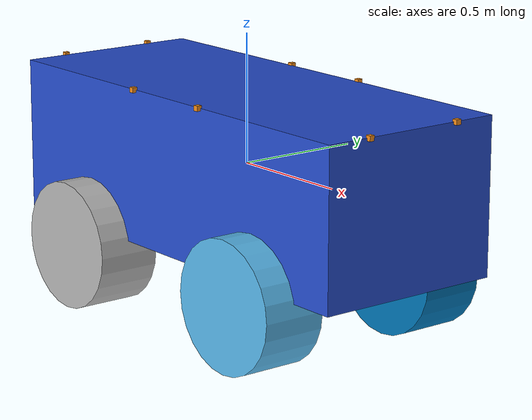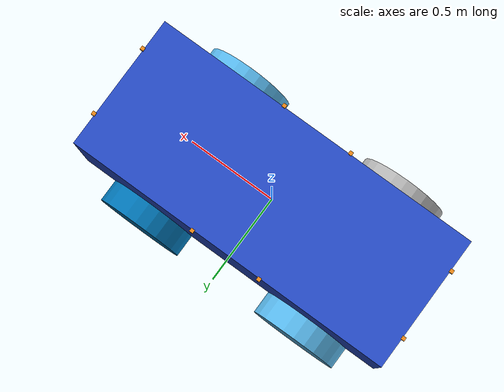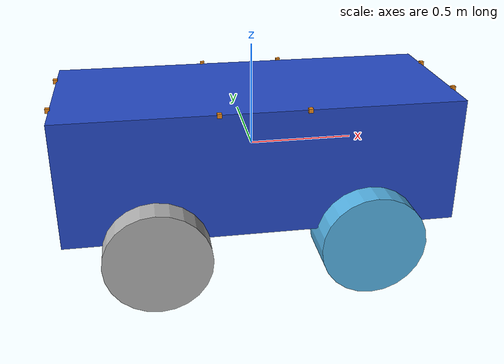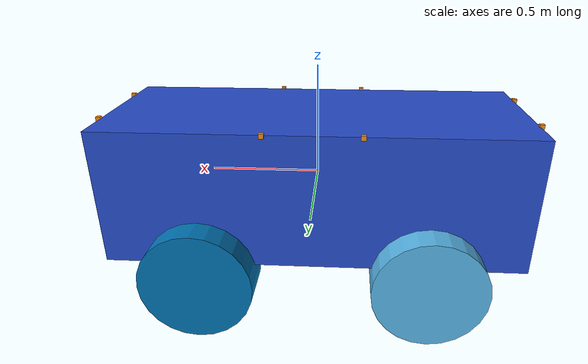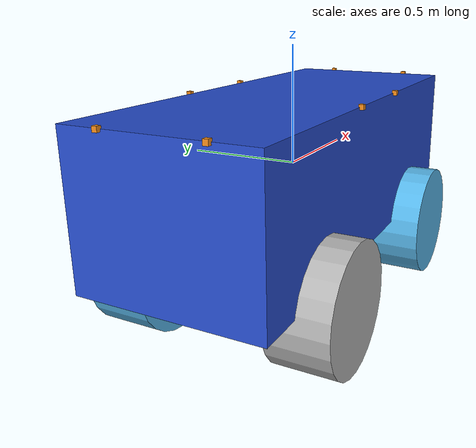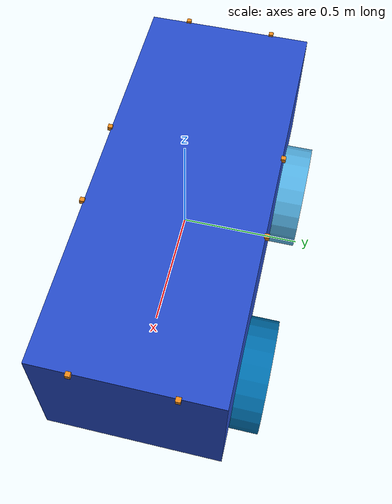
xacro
<?xml version="1.0" ?>
<robot name="tigra" xmlns:xacro="http://www.ros.org/wiki/xacro">

<xacro:property name="length" value="1.85" />
<xacro:property name="width" value="0.75" />
<xacro:property name="heigth" value="0.6" />
<xacro:property name="mass" value="420" />

<xacro:property name="wheel_width" value="0.25" />
<xacro:property name="wheel_radius" value="0.25" />
<xacro:property name="wheel_mass" value="20" />

<xacro:property name="wheelbase" value="1.0" />
<xacro:property name="half_wheelbase" value="${wheelbase/2}" />
<xacro:property name="track_width" value="0.8" />

<xacro:property name="wheel_turn_limit" value="${pi/4}"/>
<xacro:property name="degrees_30" value="${pi/6}"/>
<xacro:property name="mid_wheel_turn_limit" value="${degrees_30}"/>

<xacro:property name="springStiffness" value="125000" />
<xacro:property name="springReference" value="0" />

<xacro:property name="lidar_mass" value="0.1" />
<xacro:property name="lidar_height" value="0.02"/>
<xacro:property name="lidar_radius" value="0.04"/>

<xacro:property name="length" value="1.85" />
<xacro:property name="width" value="0.75" />
<xacro:property name="heigth" value="0.6" />
<xacro:property name="mass" value="420" />
<xacro:property name="wheel_width" value="0.25" />
<xacro:property name="wheel_radius" value="0.25" />
<xacro:property name="wheel_mass" value="20" />
<xacro:property name="wheel_turn_limit" value="${pi/4}" />

<xacro:property name="cam_mass" value="0"/>
<xacro:property name="cam_size" value="0.02" />

<xacro:property name="degrees_90" value="${pi/2}"/>
<xacro:property name="degrees_180" value="${pi}"/>

<xacro:property name="robot_name" value="tigra" />

<!-- base_footprint - base_link on floor -->

<xacro:arg name="pub_tf" default="true" />

<!-- inertia -->
<xacro:macro name="null_inertial">
    <inertial>
      <mass value="1.0"/>
      <inertia ixx="0.01" ixy="0" ixz="0"
               iyy="0.01" iyz="0"
               izz="0.01"/>
    </inertial>
</xacro:macro>

<xacro:macro name="base_inertial"
               params="width length height mass *origin">
    <inertial>
      <xacro:insert_block name="origin"/>
      <mass value="${mass}"/>
      <inertia ixx="${mass * (width * width + height * height) / 12}"
               ixy="0" ixz="0"
               iyy="${mass * (length * length + height * height) / 12}"
               iyz="0"
               izz="${mass * (width * width + length * length) / 12}"/>
    </inertial>
</xacro:macro>

<xacro:macro name="wheel_inertial"
               params="r h mass *origin">
    <inertial>
      <xacro:insert_block name="origin"/>
      <mass value="${mass}"/>
      <inertia ixx="${mass / 12 * (3 * r * r + h * h)}" ixy="0.0" ixz="0.0"
               iyy="${mass / 12 * (3 * r * r + h * h)}" iyz="0.0"
               izz="${mass / 2 * r * r}" />
    </inertial>
</xacro:macro>

<!-- xacro base new -->
<link name="base_link">
    <visual>
     	<origin xyz="0 0 0" rpy="0 0 0" />
        <geometry>
            <box size="${length} ${width} ${heigth}"/>
        </geometry>
        <material name="blue"/>
    </visual>
    <collision name="base_collision">
    	<origin xyz="0 0 0" rpy="0 0 0" />
        <geometry>
            <box size="${length} ${width} ${heigth}"/>
        </geometry>
    </collision>
	<xacro:base_inertial
    width="${width}" length="${length}"
	height="${heigth}" mass="${mass}" >
    <origin xyz="0 0 0" rpy="0 0 0" />
	</xacro:base_inertial>
</link>

<!-- xacro wheel new -->
<xacro:macro name="wheels" params="name">
    <link name="${name}">
      <visual>
        <origin xyz="0 0 0" rpy="${pi/2} 0 0" />
        <geometry>
          <cylinder length="${wheel_width}" radius="${wheel_radius}"/>
        </geometry>
      </visual>
      <collision>
        <origin xyz="0 0 0" rpy="${pi/2} 0 0" />
        <geometry>
          <cylinder length="${wheel_width}" radius="${wheel_radius}"/>
        </geometry>
      </collision>
      <xacro:wheel_inertial
          r="${wheel_radius}" h="${wheel_width}"
          mass="${wheel_mass}" >
	  <origin xyz="0 0 0" rpy="${pi/2} 0 0" />
      </xacro:wheel_inertial>
    </link>
</xacro:macro>

<!-- speed -->
<xacro:macro name="speed_wheel" params="name base_name xyz ">
    <xacro:wheels name="wheel_${name}" />

    <gazebo reference="${name}_spring_joint">
    	<implicitSpringDamper>true</implicitSpringDamper>
    	<springStiffness>${springStiffness}</springStiffness>
    	<springReference>${springReference}</springReference>
    </gazebo>

    <joint name="${name}_spring_joint" type="prismatic">
    <limit lower="-0.1" upper="0.1" effort="0" velocity="0"/>
      <parent link="${base_name}"/>
      <child link="spring1_${name}"/>
	  <dynamics damping="0.0" friction="0.0"/>
	  <axis xyz="0 0 1"/>
    </joint>

    <link name="spring1_${name}">
      <xacro:null_inertial/>
    </link>

    <joint name="${name}_speed_joint" type="continuous">
      <parent link="spring1_${name}"/>
      <child link="wheel_${name}"/>
      <origin xyz="${xyz}" rpy="0 0 0"/>
      <axis xyz="0 1 0"/>
      <limit effort="500.0" velocity="10.0" />
    </joint>
</xacro:macro>

<!-- steer -->
<xacro:macro name="steer_wheel" params="name base_name xyz">
    <xacro:wheels name="wheel_${name}" />

    <gazebo reference="${name}_spring_joint">
    	<implicitSpringDamper>true</implicitSpringDamper>
    	<springStiffness>${springStiffness}</springStiffness>
    	<springReference>${springReference}</springReference>
    </gazebo>

    <joint name="${name}_spring_joint" type="prismatic">
    <limit lower="-0.1" upper="0.1" effort="0" velocity="0"/>
      <parent link="${base_name}"/>
      <child link="spring2_${name}"/>
	  <dynamics damping="0.0" friction="0.0"/>
	  <axis xyz="0 0 1"/>
    </joint>

    <link name="spring2_${name}">
      <xacro:null_inertial/>
    </link>

    <joint name="${name}_steer_joint" type="revolute">
      <limit lower="${-wheel_turn_limit}"
             upper="${wheel_turn_limit}"
             effort="1000" velocity="0"/>
      <parent link="spring2_${name}"/>
      <child link="steer_${name}"/>
      <origin xyz="${xyz}" rpy="0 0 0"/>
      <axis xyz="0 0 1"/>
    </joint>

     <link name="steer_${name}">
      <xacro:null_inertial/>
    </link>

    <joint name="${name}_speed_joint" type="continuous">
      <parent link="steer_${name}"/>
      <child link="wheel_${name}"/>
      <origin xyz="0 0 0" rpy="0 0 0"/>
      <axis xyz="0 1 0"/>
      <limit effort="500" velocity="10.0" />
    </joint>
</xacro:macro>

<gazebo>
	<plugin name="tigra_interface_plugin" filename="libtigra_interface_plugin.so" >
		<robotName>tigra</robotName>
		<maxSteerRad>${mid_wheel_turn_limit}</maxSteerRad>
		<wheelbase>${wheelbase}</wheelbase>
		<wheelRadius>${wheel_radius}</wheelRadius>
		<trackWidth>${track_width}</trackWidth>
		<wheel_rl_joint_>joint_left_wheel_1_speed_joint</wheel_rl_joint_>
		<wheel_rr_joint_>joint_right_wheel_1_speed_joint</wheel_rr_joint_>
		<wheel_fl_joint_>joint_left_wheel_2_speed_joint</wheel_fl_joint_>
		<wheel_fr_joint_>joint_right_wheel_2_speed_joint</wheel_fr_joint_>
	</plugin>
</gazebo>

	<!-- START MACROS FOR VISUAL CAM -->
    <xacro:macro name="camera_link" params="name direction position">
        <link name="${direction}_${position}_cam_frame">
            <visual>
                <origin xyz="0 0 0" rpy="0 0 0" />
                <geometry>
                    <box size="${cam_size} ${cam_size} ${cam_size}" />
                </geometry>
            </visual>

            <collision>
                <origin xyz="0 0 0" rpy="0 0 0" />
                <geometry>
                    <box size="${cam_size} ${cam_size} ${cam_size}" />
                </geometry>
            </collision>

            <inertial>
                <mass value="1e-5" />
                <origin xyz="0 0 0" rpy="0 0 0"/>
                <inertia ixx="1e-6" ixy="0" ixz="0" iyy="1e-6" iyz="0" izz="1e-6" />
            </inertial>
        </link>
    </xacro:macro>
<!-- END MACROS FOR VISUAL CAM -->

<!-- START MACROS FOR CREATE CAM IN THE GAZEBO -->

    <xacro:macro name="single_camera" params="name direction position xyz rpy fov">

        <xacro:camera_link name="${name}" direction="${direction}" position="${position}" />

        <joint name="${direction}_${position}_joint" type="fixed">
            <child link="${direction}_${position}_cam_frame" />
            <parent link="base_link" />
            <origin xyz="${xyz}" rpy="${rpy}" />
        </joint>

        <link name="${direction}_${position}_optical_frame" />

        <joint name="${direction}_${position}_optical_joint" type="fixed">
            <child link="${direction}_${position}_optical_frame" />
            <parent link="${direction}_${position}_cam_frame" />
            <origin xyz="0 0 0" rpy="-${degrees_90} 0.0 -${degrees_90}" />
        </joint>

        <gazebo reference="${direction}_${position}_cam_frame">
            <material>Gazebo/Orange</material>

            <sensor type="camera" name="${direction}_${position}_cam">
                <update_rate>30.0</update_rate>
                <camera name="${direction}_${position}_cam">
                    <horizontal_fov>${fov}</horizontal_fov>
                    <image>
                        <width>800</width>
                        <height>600</height>
                        <format>R8G8B8</format>
                    </image>
                    <clip>
                        <near>0.02</near>
                        <far>300</far>
                    </clip>
                    <noise>
                        <type>gaussian</type>
                        <mean>0.0</mean>
                        <stddev>0.001</stddev>
                    </noise>
                </camera>
                <plugin name="${direction}_${position}_cam_controller" filename="libgazebo_ros_camera.so">
                    <alwaysOn>true</alwaysOn>
                    <updateRate>30.0</updateRate>
                    <cameraName>${robot_name}/${direction}/${position}</cameraName>
                    <imageTopicName>image_raw</imageTopicName>
                    <frameName>${direction}_${position}_optical_frame</frameName>
                    <hackBaseline>0.07</hackBaseline>
                    <!-- hackBase line cheks!!!!! -->
                    <distortionK1>0.0</distortionK1>
                    <distortionK2>0.0</distortionK2>
                    <distortionK3>0.0</distortionK3>
                    <distortionT1>0.0</distortionT1>
                    <distortionT2>0.0</distortionT2>
                </plugin>
            </sensor>
        </gazebo>
    </xacro:macro>
<!-- END MACROS FOR CREATE CAM IN THE GAZEBO -->

<!-- steer_wheel -->
	<xacro:steer_wheel name="joint_right_wheel_1" base_name="base_link" xyz="0.5 -0.375 -0.35" />
	<xacro:steer_wheel name="joint_left_wheel_1" base_name="base_link" xyz="0.5 0.375 -0.35" />
<!-- speed_wheel -->
	<xacro:speed_wheel name="joint_right_wheel_2" base_name="base_link" xyz="-0.5 -0.375 -0.35" />
	<xacro:speed_wheel name="joint_left_wheel_2" base_name="base_link" xyz="-0.5 0.375 -0.35" />

    <xacro:single_camera name="front_direction_left" direction="front" position="left" xyz="0.93 0.2 0.3" rpy="0 0 0" fov="1.3962634" />
    <xacro:single_camera name="front_direction_right" direction="front" position="right" xyz="0.93 -0.2 0.3" rpy="0 0 0" fov="1.3962634" />

    <xacro:single_camera name="backside_direction_left" direction="backside" position="left" xyz="-0.93 -0.2 0.3" rpy="0 0.0 ${degrees_180}" fov="1.3962634" />
    <xacro:single_camera name="backside_direction_right" direction="backside" position="right" xyz="-0.93 0.2 0.3" rpy="0 0.0 ${degrees_180}" fov="1.3962634" />

    <xacro:single_camera name="rightside_direction_left" direction="rightside" position="left" xyz="0.2 -0.38 0.3" rpy="0 0.0 -${degrees_90}" fov="1.3962634" />
    <xacro:single_camera name="rightside_direction_right" direction="rightside" position="right" xyz="-0.2 -0.38 0.3" rpy="0 0.0 -${degrees_90}" fov="1.3962634" />

    <xacro:single_camera name="leftside_direction_left" direction="leftside" position="left" xyz="-0.2 0.38 0.3" rpy="0 0.0 ${degrees_90}" fov="1.3962634" />
    <xacro:single_camera name="leftside_direction_right" direction="leftside" position="right" xyz="0.2 0.38 0.3" rpy="0 0.0 ${degrees_90}" fov="1.3962634" />
</robot>
